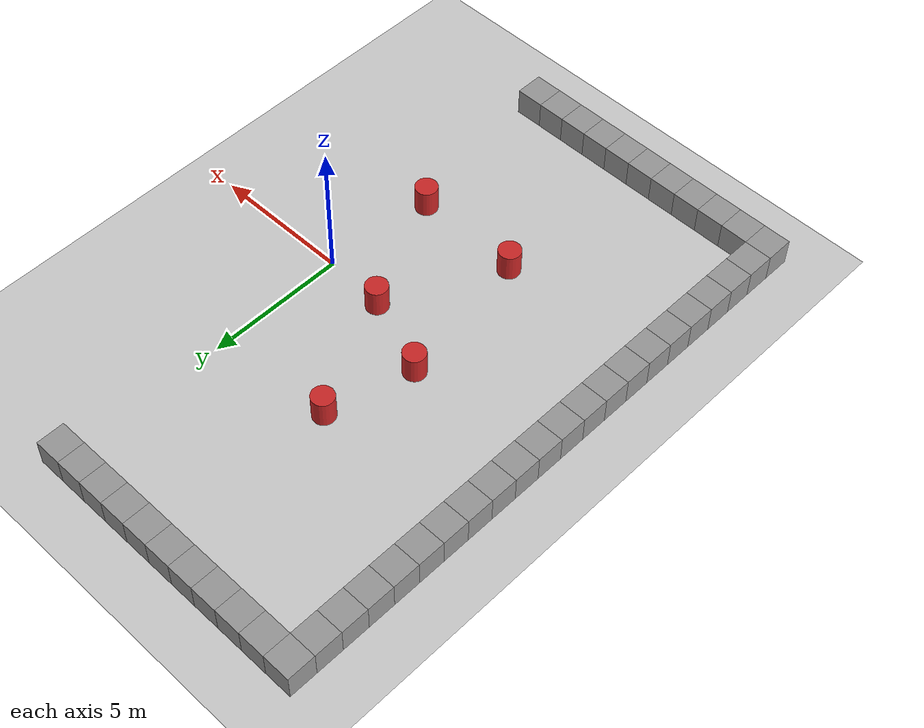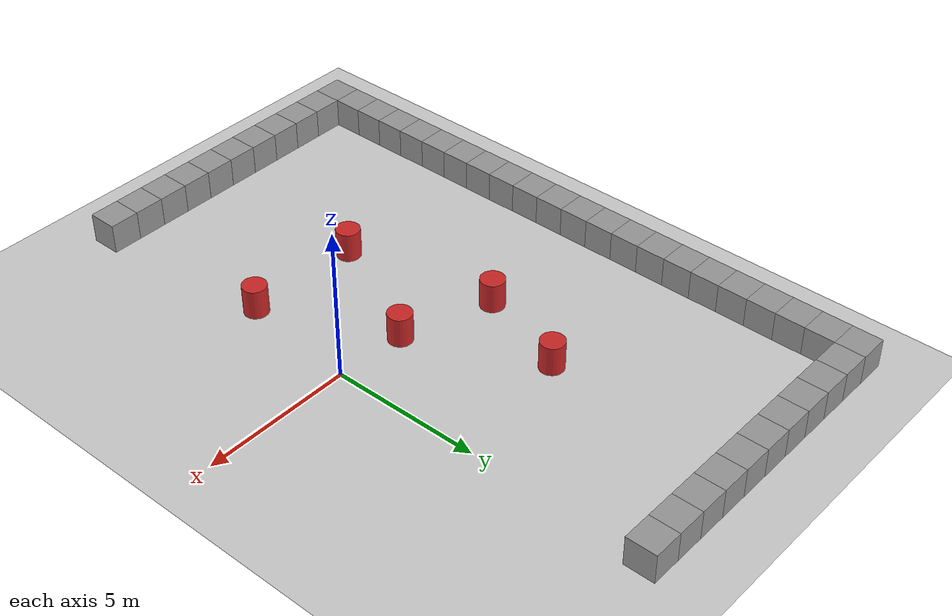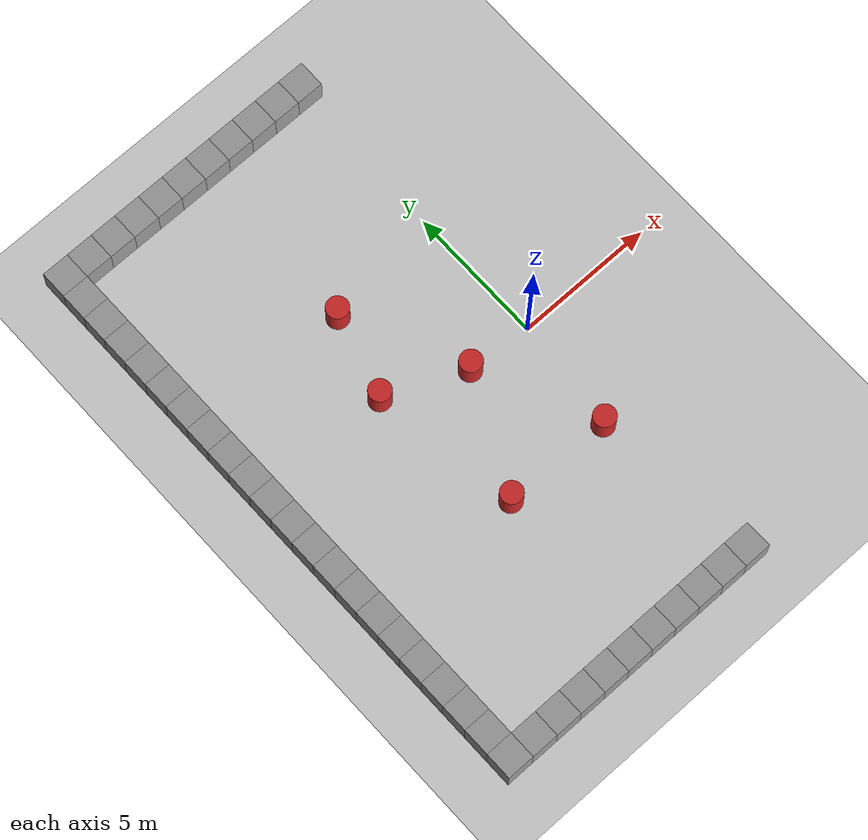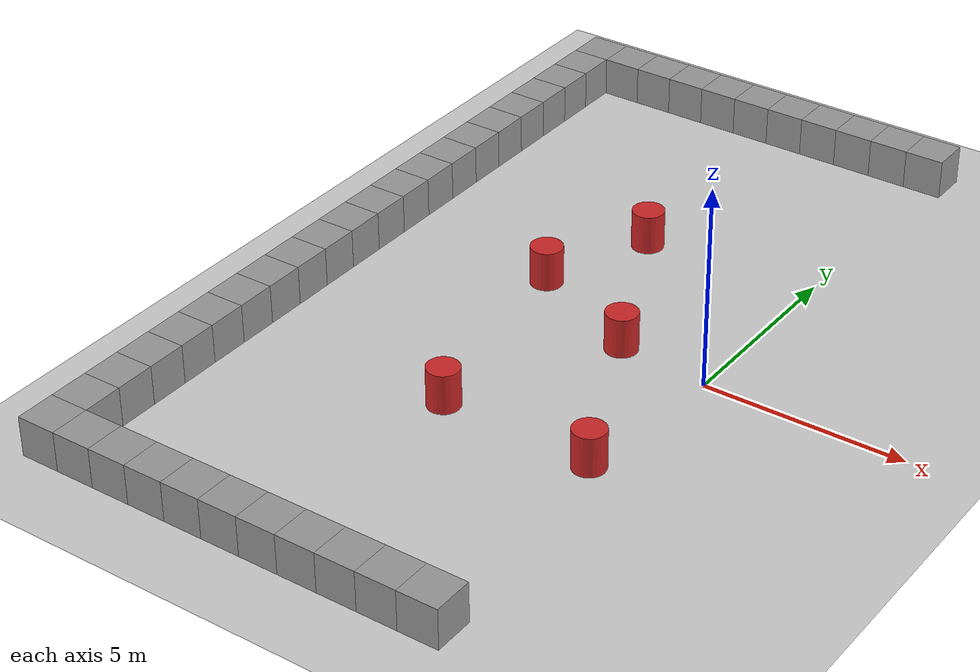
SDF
<sdf version="1.6">
 <world name="default">
  <model name="ground_plane">
   <static>1</static>
   <link name="link">
    <collision name="collision">
     <geometry><plane><normal>0 0 1</normal><size>100 100</size></plane></geometry>
     <surface><friction><ode><mu>100</mu><mu2>50</mu2></ode></friction></surface>
    </collision>
    <visual name="visual">
     <cast_shadows>0</cast_shadows>
     <geometry><plane><normal>0 0 1</normal><size>100 100</size></plane></geometry>
     <material>
      <script><uri>file://media/materials/scripts/gazebo.material</uri><name>Gazebo/Grey</name></script>
     </material>
    </visual>
    <velocity_decay><linear>0</linear><angular>0</angular></velocity_decay>
   </link>
  </model>
  <model name="unit_box_1">
   <pose>-10 -10 0.5 0 -0 0</pose>
   <link name="link">
    <inertial>
     <mass>1</mass>
     <inertia><ixx>1</ixx><ixy>0</ixy><ixz>0</ixz><iyy>1</iyy><iyz>0</iyz><izz>1</izz></inertia>
    </inertial>
    <collision name="collision"><geometry><box><size>1 1 1</size></box></geometry></collision>
    <visual name="visual">
     <geometry><box><size>1 1 1</size></box></geometry>
     <material>
      <script><uri>file://media/materials/scripts/gazebo.material</uri><name>Gazebo/Grey</name></script>
     </material>
    </visual>
    <velocity_decay><linear>0</linear><angular>0</angular></velocity_decay>
   </link>
   <static>1</static>
  </model>
  <model name="unit_box_40">
   <pose>-10 -9 0.5 0 -0 0</pose>
   <link name="link">
    <inertial>
     <mass>1</mass>
     <inertia><ixx>1</ixx><ixy>0</ixy><ixz>0</ixz><iyy>1</iyy><iyz>0</iyz><izz>1</izz></inertia>
    </inertial>
    <collision name="collision"><geometry><box><size>1 1 1</size></box></geometry></collision>
    <visual name="visual">
     <geometry><box><size>1 1 1</size></box></geometry>
     <material>
      <script><uri>file://media/materials/scripts/gazebo.material</uri><name>Gazebo/Grey</name></script>
     </material>
    </visual>
    <velocity_decay><linear>0</linear><angular>0</angular></velocity_decay>
   </link>
   <static>1</static>
  </model>
  <model name="unit_box_41">
   <pose>-10 -8 0.5 0 -0 0</pose>
   <link name="link">
    <inertial>
     <mass>1</mass>
     <inertia><ixx>1</ixx><ixy>0</ixy><ixz>0</ixz><iyy>1</iyy><iyz>0</iyz><izz>1</izz></inertia>
    </inertial>
    <collision name="collision"><geometry><box><size>1 1 1</size></box></geometry></collision>
    <visual name="visual">
     <geometry><box><size>1 1 1</size></box></geometry>
     <material>
      <script><uri>file://media/materials/scripts/gazebo.material</uri><name>Gazebo/Grey</name></script>
     </material>
    </visual>
    <velocity_decay><linear>0</linear><angular>0</angular></velocity_decay>
   </link>
   <static>1</static>
  </model>
  <model name="unit_box_42">
   <pose>-10 -7 0.5 0 -0 0</pose>
   <link name="link">
    <inertial>
     <mass>1</mass>
     <inertia><ixx>1</ixx><ixy>0</ixy><ixz>0</ixz><iyy>1</iyy><iyz>0</iyz><izz>1</izz></inertia>
    </inertial>
    <collision name="collision"><geometry><box><size>1 1 1</size></box></geometry></collision>
    <visual name="visual">
     <geometry><box><size>1 1 1</size></box></geometry>
     <material>
      <script><uri>file://media/materials/scripts/gazebo.material</uri><name>Gazebo/Grey</name></script>
     </material>
    </visual>
    <velocity_decay><linear>0</linear><angular>0</angular></velocity_decay>
   </link>
   <static>1</static>
  </model>
  <model name="unit_box_43">
   <pose>-10 -6 0.5 0 -0 0</pose>
   <link name="link">
    <inertial>
     <mass>1</mass>
     <inertia><ixx>1</ixx><ixy>0</ixy><ixz>0</ixz><iyy>1</iyy><iyz>0</iyz><izz>1</izz></inertia>
    </inertial>
    <collision name="collision"><geometry><box><size>1 1 1</size></box></geometry></collision>
    <visual name="visual">
     <geometry><box><size>1 1 1</size></box></geometry>
     <material>
      <script><uri>file://media/materials/scripts/gazebo.material</uri><name>Gazebo/Grey</name></script>
     </material>
    </visual>
    <velocity_decay><linear>0</linear><angular>0</angular></velocity_decay>
   </link>
   <static>1</static>
  </model>
  <model name="unit_box_44">
   <pose>-10 -5 0.5 0 -0 0</pose>
   <link name="link">
    <inertial>
     <mass>1</mass>
     <inertia><ixx>1</ixx><ixy>0</ixy><ixz>0</ixz><iyy>1</iyy><iyz>0</iyz><izz>1</izz></inertia>
    </inertial>
    <collision name="collision"><geometry><box><size>1 1 1</size></box></geometry></collision>
    <visual name="visual">
     <geometry><box><size>1 1 1</size></box></geometry>
     <material>
      <script><uri>file://media/materials/scripts/gazebo.material</uri><name>Gazebo/Grey</name></script>
     </material>
    </visual>
    <velocity_decay><linear>0</linear><angular>0</angular></velocity_decay>
   </link>
   <static>1</static>
  </model>
  <model name="unit_box_45">
   <pose>-10 -4 0.5 0 -0 0</pose>
   <link name="link">
    <inertial>
     <mass>1</mass>
     <inertia><ixx>1</ixx><ixy>0</ixy><ixz>0</ixz><iyy>1</iyy><iyz>0</iyz><izz>1</izz></inertia>
    </inertial>
    <collision name="collision"><geometry><box><size>1 1 1</size></box></geometry></collision>
    <visual name="visual">
     <geometry><box><size>1 1 1</size></box></geometry>
     <material>
      <script><uri>file://media/materials/scripts/gazebo.material</uri><name>Gazebo/Grey</name></script>
     </material>
    </visual>
    <velocity_decay><linear>0</linear><angular>0</angular></velocity_decay>
   </link>
   <static>1</static>
  </model>
  <model name="unit_box_46">
   <pose>-10 -3 0.5 0 -0 0</pose>
   <link name="link">
    <inertial>
     <mass>1</mass>
     <inertia><ixx>1</ixx><ixy>0</ixy><ixz>0</ixz><iyy>1</iyy><iyz>0</iyz><izz>1</izz></inertia>
    </inertial>
    <collision name="collision"><geometry><box><size>1 1 1</size></box></geometry></collision>
    <visual name="visual">
     <geometry><box><size>1 1 1</size></box></geometry>
     <material>
      <script><uri>file://media/materials/scripts/gazebo.material</uri><name>Gazebo/Grey</name></script>
     </material>
    </visual>
    <velocity_decay><linear>0</linear><angular>0</angular></velocity_decay>
   </link>
   <static>1</static>
  </model>
  <model name="unit_box_47">
   <pose>-10 -2 0.5 0 -0 0</pose>
   <link name="link">
    <inertial>
     <mass>1</mass>
     <inertia><ixx>1</ixx><ixy>0</ixy><ixz>0</ixz><iyy>1</iyy><iyz>0</iyz><izz>1</izz></inertia>
    </inertial>
    <collision name="collision"><geometry><box><size>1 1 1</size></box></geometry></collision>
    <visual name="visual">
     <geometry><box><size>1 1 1</size></box></geometry>
     <material>
      <script><uri>file://media/materials/scripts/gazebo.material</uri><name>Gazebo/Grey</name></script>
     </material>
    </visual>
    <velocity_decay><linear>0</linear><angular>0</angular></velocity_decay>
   </link>
   <static>1</static>
  </model>
  <model name="unit_box_61">
   <pose>-10 -1 0.5 0 -0 0</pose>
   <link name="link">
    <inertial>
     <mass>1</mass>
     <inertia><ixx>1</ixx><ixy>0</ixy><ixz>0</ixz><iyy>1</iyy><iyz>0</iyz><izz>1</izz></inertia>
    </inertial>
    <collision name="collision"><geometry><box><size>1 1 1</size></box></geometry></collision>
    <visual name="visual">
     <geometry><box><size>1 1 1</size></box></geometry>
     <material>
      <script><uri>file://media/materials/scripts/gazebo.material</uri><name>Gazebo/Grey</name></script>
     </material>
    </visual>
    <velocity_decay><linear>0</linear><angular>0</angular></velocity_decay>
   </link>
   <static>1</static>
  </model>
  <model name="unit_box_67">
   <pose>-10 0 0.5 0 -0 0</pose>
   <link name="link">
    <inertial>
     <mass>1</mass>
     <inertia><ixx>1</ixx><ixy>0</ixy><ixz>0</ixz><iyy>1</iyy><iyz>0</iyz><izz>1</izz></inertia>
    </inertial>
    <collision name="collision"><geometry><box><size>1 1 1</size></box></geometry></collision>
    <visual name="visual">
     <geometry><box><size>1 1 1</size></box></geometry>
     <material>
      <script><uri>file://media/materials/scripts/gazebo.material</uri><name>Gazebo/Grey</name></script>
     </material>
    </visual>
    <velocity_decay><linear>0</linear><angular>0</angular></velocity_decay>
   </link>
   <static>1</static>
  </model>
  <model name="unit_box_68">
   <pose>-10 1 0.5 0 -0 0</pose>
   <link name="link">
    <inertial>
     <mass>1</mass>
     <inertia><ixx>1</ixx><ixy>0</ixy><ixz>0</ixz><iyy>1</iyy><iyz>0</iyz><izz>1</izz></inertia>
    </inertial>
    <collision name="collision"><geometry><box><size>1 1 1</size></box></geometry></collision>
    <visual name="visual">
     <geometry><box><size>1 1 1</size></box></geometry>
     <material>
      <script><uri>file://media/materials/scripts/gazebo.material</uri><name>Gazebo/Grey</name></script>
     </material>
    </visual>
    <velocity_decay><linear>0</linear><angular>0</angular></velocity_decay>
   </link>
   <static>1</static>
  </model>
  <model name="unit_box_69">
   <pose>-10 2 0.5 0 -0 0</pose>
   <link name="link">
    <inertial>
     <mass>1</mass>
     <inertia><ixx>1</ixx><ixy>0</ixy><ixz>0</ixz><iyy>1</iyy><iyz>0</iyz><izz>1</izz></inertia>
    </inertial>
    <collision name="collision"><geometry><box><size>1 1 1</size></box></geometry></collision>
    <visual name="visual">
     <geometry><box><size>1 1 1</size></box></geometry>
     <material>
      <script><uri>file://media/materials/scripts/gazebo.material</uri><name>Gazebo/Grey</name></script>
     </material>
    </visual>
    <velocity_decay><linear>0</linear><angular>0</angular></velocity_decay>
   </link>
   <static>1</static>
  </model>
  <model name="unit_box_72">
   <pose>-10 3 0.5 0 -0 0</pose>
   <link name="link">
    <inertial>
     <mass>1</mass>
     <inertia><ixx>1</ixx><ixy>0</ixy><ixz>0</ixz><iyy>1</iyy><iyz>0</iyz><izz>1</izz></inertia>
    </inertial>
    <collision name="collision"><geometry><box><size>1 1 1</size></box></geometry></collision>
    <visual name="visual">
     <geometry><box><size>1 1 1</size></box></geometry>
     <material>
      <script><uri>file://media/materials/scripts/gazebo.material</uri><name>Gazebo/Grey</name></script>
     </material>
    </visual>
    <velocity_decay><linear>0</linear><angular>0</angular></velocity_decay>
   </link>
   <static>1</static>
  </model>
  <model name="unit_box_73">
   <pose>-10 4 0.5 0 -0 0</pose>
   <link name="link">
    <inertial>
     <mass>1</mass>
     <inertia><ixx>1</ixx><ixy>0</ixy><ixz>0</ixz><iyy>1</iyy><iyz>0</iyz><izz>1</izz></inertia>
    </inertial>
    <collision name="collision"><geometry><box><size>1 1 1</size></box></geometry></collision>
    <visual name="visual">
     <geometry><box><size>1 1 1</size></box></geometry>
     <material>
      <script><uri>file://media/materials/scripts/gazebo.material</uri><name>Gazebo/Grey</name></script>
     </material>
    </visual>
    <velocity_decay><linear>0</linear><angular>0</angular></velocity_decay>
   </link>
   <static>1</static>
  </model>
  <model name="unit_box_74">
   <pose>-10 5 0.5 0 -0 0</pose>
   <link name="link">
    <inertial>
     <mass>1</mass>
     <inertia><ixx>1</ixx><ixy>0</ixy><ixz>0</ixz><iyy>1</iyy><iyz>0</iyz><izz>1</izz></inertia>
    </inertial>
    <collision name="collision"><geometry><box><size>1 1 1</size></box></geometry></collision>
    <visual name="visual">
     <geometry><box><size>1 1 1</size></box></geometry>
     <material>
      <script><uri>file://media/materials/scripts/gazebo.material</uri><name>Gazebo/Grey</name></script>
     </material>
    </visual>
    <velocity_decay><linear>0</linear><angular>0</angular></velocity_decay>
   </link>
   <static>1</static>
  </model>
  <model name="unit_box_75">
   <pose>-10 6 0.5 0 -0 0</pose>
   <link name="link">
    <inertial>
     <mass>1</mass>
     <inertia><ixx>1</ixx><ixy>0</ixy><ixz>0</ixz><iyy>1</iyy><iyz>0</iyz><izz>1</izz></inertia>
    </inertial>
    <collision name="collision"><geometry><box><size>1 1 1</size></box></geometry></collision>
    <visual name="visual">
     <geometry><box><size>1 1 1</size></box></geometry>
     <material>
      <script><uri>file://media/materials/scripts/gazebo.material</uri><name>Gazebo/Grey</name></script>
     </material>
    </visual>
    <velocity_decay><linear>0</linear><angular>0</angular></velocity_decay>
   </link>
   <static>1</static>
  </model>
  <model name="unit_box_76">
   <pose>-10 7 0.5 0 -0 0</pose>
   <link name="link">
    <inertial>
     <mass>1</mass>
     <inertia><ixx>1</ixx><ixy>0</ixy><ixz>0</ixz><iyy>1</iyy><iyz>0</iyz><izz>1</izz></inertia>
    </inertial>
    <collision name="collision"><geometry><box><size>1 1 1</size></box></geometry></collision>
    <visual name="visual">
     <geometry><box><size>1 1 1</size></box></geometry>
     <material>
      <script><uri>file://media/materials/scripts/gazebo.material</uri><name>Gazebo/Grey</name></script>
     </material>
    </visual>
    <velocity_decay><linear>0</linear><angular>0</angular></velocity_decay>
   </link>
   <static>1</static>
  </model>
  <model name="unit_box_77">
   <pose>-10 8 0.5 0 -0 0</pose>
   <link name="link">
    <inertial>
     <mass>1</mass>
     <inertia><ixx>1</ixx><ixy>0</ixy><ixz>0</ixz><iyy>1</iyy><iyz>0</iyz><izz>1</izz></inertia>
    </inertial>
    <collision name="collision"><geometry><box><size>1 1 1</size></box></geometry></collision>
    <visual name="visual">
     <geometry><box><size>1 1 1</size></box></geometry>
     <material>
      <script><uri>file://media/materials/scripts/gazebo.material</uri><name>Gazebo/Grey</name></script>
     </material>
    </visual>
    <velocity_decay><linear>0</linear><angular>0</angular></velocity_decay>
   </link>
   <static>1</static>
  </model>
  <model name="unit_box_78">
   <pose>-10 9 0.5 0 -0 0</pose>
   <link name="link">
    <inertial>
     <mass>1</mass>
     <inertia><ixx>1</ixx><ixy>0</ixy><ixz>0</ixz><iyy>1</iyy><iyz>0</iyz><izz>1</izz></inertia>
    </inertial>
    <collision name="collision"><geometry><box><size>1 1 1</size></box></geometry></collision>
    <visual name="visual">
     <geometry><box><size>1 1 1</size></box></geometry>
     <material>
      <script><uri>file://media/materials/scripts/gazebo.material</uri><name>Gazebo/Grey</name></script>
     </material>
    </visual>
    <velocity_decay><linear>0</linear><angular>0</angular></velocity_decay>
   </link>
   <static>1</static>
  </model>
  <model name="unit_box_79">
   <pose>-10 10 0.5 0 -0 0</pose>
   <link name="link">
    <inertial>
     <mass>1</mass>
     <inertia><ixx>1</ixx><ixy>0</ixy><ixz>0</ixz><iyy>1</iyy><iyz>0</iyz><izz>1</izz></inertia>
    </inertial>
    <collision name="collision"><geometry><box><size>1 1 1</size></box></geometry></collision>
    <visual name="visual">
     <geometry><box><size>1 1 1</size></box></geometry>
     <material>
      <script><uri>file://media/materials/scripts/gazebo.material</uri><name>Gazebo/Grey</name></script>
     </material>
    </visual>
    <velocity_decay><linear>0</linear><angular>0</angular></velocity_decay>
   </link>
   <static>1</static>
  </model>
  <model name="unit_box_300">
   <pose>-10 11 0.5 0 -0 0</pose>
   <link name="link">
    <inertial>
     <mass>1</mass>
     <inertia><ixx>1</ixx><ixy>0</ixy><ixz>0</ixz><iyy>1</iyy><iyz>0</iyz><izz>1</izz></inertia>
    </inertial>
    <collision name="collision"><geometry><box><size>1 1 1</size></box></geometry></collision>
    <visual name="visual">
     <geometry><box><size>1 1 1</size></box></geometry>
     <material>
      <script><uri>file://media/materials/scripts/gazebo.material</uri><name>Gazebo/Grey</name></script>
     </material>
    </visual>
    <velocity_decay><linear>0</linear><angular>0</angular></velocity_decay>
   </link>
   <static>1</static>
  </model>
  <model name="unit_box_80">
   <pose>-9 -10 0.5 0 -0 0</pose>
   <link name="link">
    <inertial>
     <mass>1</mass>
     <inertia><ixx>1</ixx><ixy>0</ixy><ixz>0</ixz><iyy>1</iyy><iyz>0</iyz><izz>1</izz></inertia>
    </inertial>
    <collision name="collision"><geometry><box><size>1 1 1</size></box></geometry></collision>
    <visual name="visual">
     <geometry><box><size>1 1 1</size></box></geometry>
     <material>
      <script><uri>file://media/materials/scripts/gazebo.material</uri><name>Gazebo/Grey</name></script>
     </material>
    </visual>
    <velocity_decay><linear>0</linear><angular>0</angular></velocity_decay>
   </link>
   <static>1</static>
  </model>
  <model name="unit_box_96">
   <pose>-8 -10 0.5 0 -0 0</pose>
   <link name="link">
    <inertial>
     <mass>1</mass>
     <inertia><ixx>1</ixx><ixy>0</ixy><ixz>0</ixz><iyy>1</iyy><iyz>0</iyz><izz>1</izz></inertia>
    </inertial>
    <collision name="collision"><geometry><box><size>1 1 1</size></box></geometry></collision>
    <visual name="visual">
     <geometry><box><size>1 1 1</size></box></geometry>
     <material>
      <script><uri>file://media/materials/scripts/gazebo.material</uri><name>Gazebo/Grey</name></script>
     </material>
    </visual>
    <velocity_decay><linear>0</linear><angular>0</angular></velocity_decay>
   </link>
   <static>1</static>
  </model>
  <model name="unit_box_97">
   <pose>-7 -10 0.5 0 -0 0</pose>
   <link name="link">
    <inertial>
     <mass>1</mass>
     <inertia><ixx>1</ixx><ixy>0</ixy><ixz>0</ixz><iyy>1</iyy><iyz>0</iyz><izz>1</izz></inertia>
    </inertial>
    <collision name="collision"><geometry><box><size>1 1 1</size></box></geometry></collision>
    <visual name="visual">
     <geometry><box><size>1 1 1</size></box></geometry>
     <material>
      <script><uri>file://media/materials/scripts/gazebo.material</uri><name>Gazebo/Grey</name></script>
     </material>
    </visual>
    <velocity_decay><linear>0</linear><angular>0</angular></velocity_decay>
   </link>
   <static>1</static>
  </model>
  <model name="unit_box_98">
   <pose>-6 -10 0.5 0 -0 0</pose>
   <link name="link">
    <inertial>
     <mass>1</mass>
     <inertia><ixx>1</ixx><ixy>0</ixy><ixz>0</ixz><iyy>1</iyy><iyz>0</iyz><izz>1</izz></inertia>
    </inertial>
    <collision name="collision"><geometry><box><size>1 1 1</size></box></geometry></collision>
    <visual name="visual">
     <geometry><box><size>1 1 1</size></box></geometry>
     <material>
      <script><uri>file://media/materials/scripts/gazebo.material</uri><name>Gazebo/Grey</name></script>
     </material>
    </visual>
    <velocity_decay><linear>0</linear><angular>0</angular></velocity_decay>
   </link>
   <static>1</static>
  </model>
  <model name="unit_box_99">
   <pose>-5 -10 0.5 0 -0 0</pose>
   <link name="link">
    <inertial>
     <mass>1</mass>
     <inertia><ixx>1</ixx><ixy>0</ixy><ixz>0</ixz><iyy>1</iyy><iyz>0</iyz><izz>1</izz></inertia>
    </inertial>
    <collision name="collision"><geometry><box><size>1 1 1</size></box></geometry></collision>
    <visual name="visual">
     <geometry><box><size>1 1 1</size></box></geometry>
     <material>
      <script><uri>file://media/materials/scripts/gazebo.material</uri><name>Gazebo/Grey</name></script>
     </material>
    </visual>
    <velocity_decay><linear>0</linear><angular>0</angular></velocity_decay>
   </link>
   <static>1</static>
  </model>
  <model name="unit_box_100">
   <pose>-4 -10 0.5 0 -0 0</pose>
   <link name="link">
    <inertial>
     <mass>1</mass>
     <inertia><ixx>1</ixx><ixy>0</ixy><ixz>0</ixz><iyy>1</iyy><iyz>0</iyz><izz>1</izz></inertia>
    </inertial>
    <collision name="collision"><geometry><box><size>1 1 1</size></box></geometry></collision>
    <visual name="visual">
     <geometry><box><size>1 1 1</size></box></geometry>
     <material>
      <script><uri>file://media/materials/scripts/gazebo.material</uri><name>Gazebo/Grey</name></script>
     </material>
    </visual>
    <velocity_decay><linear>0</linear><angular>0</angular></velocity_decay>
   </link>
   <static>1</static>
  </model>
  <model name="unit_box_101">
   <pose>-3 -10 0.5 0 -0 0</pose>
   <link name="link">
    <inertial>
     <mass>1</mass>
     <inertia><ixx>1</ixx><ixy>0</ixy><ixz>0</ixz><iyy>1</iyy><iyz>0</iyz><izz>1</izz></inertia>
    </inertial>
    <collision name="collision"><geometry><box><size>1 1 1</size></box></geometry></collision>
    <visual name="visual">
     <geometry><box><size>1 1 1</size></box></geometry>
     <material>
      <script><uri>file://media/materials/scripts/gazebo.material</uri><name>Gazebo/Grey</name></script>
     </material>
    </visual>
    <velocity_decay><linear>0</linear><angular>0</angular></velocity_decay>
   </link>
   <static>1</static>
  </model>
  <model name="unit_box_102">
   <pose>-2 -10 0.5 0 -0 0</pose>
   <link name="link">
    <inertial>
     <mass>1</mass>
     <inertia><ixx>1</ixx><ixy>0</ixy><ixz>0</ixz><iyy>1</iyy><iyz>0</iyz><izz>1</izz></inertia>
    </inertial>
    <collision name="collision"><geometry><box><size>1 1 1</size></box></geometry></collision>
    <visual name="visual">
     <geometry><box><size>1 1 1</size></box></geometry>
     <material>
      <script><uri>file://media/materials/scripts/gazebo.material</uri><name>Gazebo/Grey</name></script>
     </material>
    </visual>
    <velocity_decay><linear>0</linear><angular>0</angular></velocity_decay>
   </link>
   <static>1</static>
  </model>
  <model name="unit_box_103">
   <pose>-1 -10 0.5 0 -0 0</pose>
   <link name="link">
    <inertial>
     <mass>1</mass>
     <inertia><ixx>1</ixx><ixy>0</ixy><ixz>0</ixz><iyy>1</iyy><iyz>0</iyz><izz>1</izz></inertia>
    </inertial>
    <collision name="collision"><geometry><box><size>1 1 1</size></box></geometry></collision>
    <visual name="visual">
     <geometry><box><size>1 1 1</size></box></geometry>
     <material>
      <script><uri>file://media/materials/scripts/gazebo.material</uri><name>Gazebo/Grey</name></script>
     </material>
    </visual>
    <velocity_decay><linear>0</linear><angular>0</angular></velocity_decay>
   </link>
   <static>1</static>
  </model>
  <model name="unit_box_104">
   <pose>0 -10 0.5 0 -0 0</pose>
   <link name="link">
    <inertial>
     <mass>1</mass>
     <inertia><ixx>1</ixx><ixy>0</ixy><ixz>0</ixz><iyy>1</iyy><iyz>0</iyz><izz>1</izz></inertia>
    </inertial>
    <collision name="collision"><geometry><box><size>1 1 1</size></box></geometry></collision>
    <visual name="visual">
     <geometry><box><size>1 1 1</size></box></geometry>
     <material>
      <script><uri>file://media/materials/scripts/gazebo.material</uri><name>Gazebo/Grey</name></script>
     </material>
    </visual>
    <velocity_decay><linear>0</linear><angular>0</angular></velocity_decay>
   </link>
   <static>1</static>
  </model>
  <model name="unit_box_115">
   <pose>-9 11 0.5 0 -0 0</pose>
   <link name="link">
    <inertial>
     <mass>1</mass>
     <inertia><ixx>1</ixx><ixy>0</ixy><ixz>0</ixz><iyy>1</iyy><iyz>0</iyz><izz>1</izz></inertia>
    </inertial>
    <collision name="collision"><geometry><box><size>1 1 1</size></box></geometry></collision>
    <visual name="visual">
     <geometry><box><size>1 1 1</size></box></geometry>
     <material>
      <script><uri>file://media/materials/scripts/gazebo.material</uri><name>Gazebo/Grey</name></script>
     </material>
    </visual>
    <velocity_decay><linear>0</linear><angular>0</angular></velocity_decay>
   </link>
   <static>1</static>
  </model>
  <model name="unit_box_116">
   <pose>-8 11 0.5 0 -0 0</pose>
   <link name="link">
    <inertial>
     <mass>1</mass>
     <inertia><ixx>1</ixx><ixy>0</ixy><ixz>0</ixz><iyy>1</iyy><iyz>0</iyz><izz>1</izz></inertia>
    </inertial>
    <collision name="collision"><geometry><box><size>1 1 1</size></box></geometry></collision>
    <visual name="visual">
     <geometry><box><size>1 1 1</size></box></geometry>
     <material>
      <script><uri>file://media/materials/scripts/gazebo.material</uri><name>Gazebo/Grey</name></script>
     </material>
    </visual>
    <velocity_decay><linear>0</linear><angular>0</angular></velocity_decay>
   </link>
   <static>1</static>
  </model>
  <model name="unit_box_121">
   <pose>-7 11 0.5 0 -0 0</pose>
   <link name="link">
    <inertial>
     <mass>1</mass>
     <inertia><ixx>1</ixx><ixy>0</ixy><ixz>0</ixz><iyy>1</iyy><iyz>0</iyz><izz>1</izz></inertia>
    </inertial>
    <collision name="collision"><geometry><box><size>1 1 1</size></box></geometry></collision>
    <visual name="visual">
     <geometry><box><size>1 1 1</size></box></geometry>
     <material>
      <script><uri>file://media/materials/scripts/gazebo.material</uri><name>Gazebo/Grey</name></script>
     </material>
    </visual>
    <velocity_decay><linear>0</linear><angular>0</angular></velocity_decay>
   </link>
   <static>1</static>
  </model>
  <model name="unit_box_134">
   <pose>-6 11 0.5 0 -0 0</pose>
   <link name="link">
    <inertial>
     <mass>1</mass>
     <inertia><ixx>1</ixx><ixy>0</ixy><ixz>0</ixz><iyy>1</iyy><iyz>0</iyz><izz>1</izz></inertia>
    </inertial>
    <collision name="collision"><geometry><box><size>1 1 1</size></box></geometry></collision>
    <visual name="visual">
     <geometry><box><size>1 1 1</size></box></geometry>
     <material>
      <script><uri>file://media/materials/scripts/gazebo.material</uri><name>Gazebo/Grey</name></script>
     </material>
    </visual>
    <velocity_decay><linear>0</linear><angular>0</angular></velocity_decay>
   </link>
   <static>1</static>
  </model>
  <model name="unit_box_135">
   <pose>-5 11 0.5 0 -0 0</pose>
   <link name="link">
    <inertial>
     <mass>1</mass>
     <inertia><ixx>1</ixx><ixy>0</ixy><ixz>0</ixz><iyy>1</iyy><iyz>0</iyz><izz>1</izz></inertia>
    </inertial>
    <collision name="collision"><geometry><box><size>1 1 1</size></box></geometry></collision>
    <visual name="visual">
     <geometry><box><size>1 1 1</size></box></geometry>
     <material>
      <script><uri>file://media/materials/scripts/gazebo.material</uri><name>Gazebo/Grey</name></script>
     </material>
    </visual>
    <velocity_decay><linear>0</linear><angular>0</angular></velocity_decay>
   </link>
   <static>1</static>
  </model>
  <model name="unit_box_136">
   <pose>-4 11 0.5 0 -0 0</pose>
   <link name="link">
    <inertial>
     <mass>1</mass>
     <inertia><ixx>1</ixx><ixy>0</ixy><ixz>0</ixz><iyy>1</iyy><iyz>0</iyz><izz>1</izz></inertia>
    </inertial>
    <collision name="collision"><geometry><box><size>1 1 1</size></box></geometry></collision>
    <visual name="visual">
     <geometry><box><size>1 1 1</size></box></geometry>
     <material>
      <script><uri>file://media/materials/scripts/gazebo.material</uri><name>Gazebo/Grey</name></script>
     </material>
    </visual>
    <velocity_decay><linear>0</linear><angular>0</angular></velocity_decay>
   </link>
   <static>1</static>
  </model>
  <model name="unit_box_137">
   <pose>-3 11 0.5 0 -0 0</pose>
   <link name="link">
    <inertial>
     <mass>1</mass>
     <inertia><ixx>1</ixx><ixy>0</ixy><ixz>0</ixz><iyy>1</iyy><iyz>0</iyz><izz>1</izz></inertia>
    </inertial>
    <collision name="collision"><geometry><box><size>1 1 1</size></box></geometry></collision>
    <visual name="visual">
     <geometry><box><size>1 1 1</size></box></geometry>
     <material>
      <script><uri>file://media/materials/scripts/gazebo.material</uri><name>Gazebo/Grey</name></script>
     </material>
    </visual>
    <velocity_decay><linear>0</linear><angular>0</angular></velocity_decay>
   </link>
   <static>1</static>
  </model>
  <model name="unit_box_146">
   <pose>-2 11 0.5 0 -0 0</pose>
   <link name="link">
    <inertial>
     <mass>1</mass>
     <inertia><ixx>1</ixx><ixy>0</ixy><ixz>0</ixz><iyy>1</iyy><iyz>0</iyz><izz>1</izz></inertia>
    </inertial>
    <collision name="collision"><geometry><box><size>1 1 1</size></box></geometry></collision>
    <visual name="visual">
     <geometry><box><size>1 1 1</size></box></geometry>
     <material>
      <script><uri>file://media/materials/scripts/gazebo.material</uri><name>Gazebo/Grey</name></script>
     </material>
    </visual>
    <velocity_decay><linear>0</linear><angular>0</angular></velocity_decay>
   </link>
   <static>1</static>
  </model>
  <model name="unit_box_147">
   <pose>-1 11 0.5 0 -0 0</pose>
   <link name="link">
    <inertial>
     <mass>1</mass>
     <inertia><ixx>1</ixx><ixy>0</ixy><ixz>0</ixz><iyy>1</iyy><iyz>0</iyz><izz>1</izz></inertia>
    </inertial>
    <collision name="collision"><geometry><box><size>1 1 1</size></box></geometry></collision>
    <visual name="visual">
     <geometry><box><size>1 1 1</size></box></geometry>
     <material>
      <script><uri>file://media/materials/scripts/gazebo.material</uri><name>Gazebo/Grey</name></script>
     </material>
    </visual>
    <velocity_decay><linear>0</linear><angular>0</angular></velocity_decay>
   </link>
   <static>1</static>
  </model>
  <model name="unit_box_148">
   <pose>0 11 0.5 0 -0 0</pose>
   <link name="link">
    <inertial>
     <mass>1</mass>
     <inertia><ixx>1</ixx><ixy>0</ixy><ixz>0</ixz><iyy>1</iyy><iyz>0</iyz><izz>1</izz></inertia>
    </inertial>
    <collision name="collision"><geometry><box><size>1 1 1</size></box></geometry></collision>
    <visual name="visual">
     <geometry><box><size>1 1 1</size></box></geometry>
     <material>
      <script><uri>file://media/materials/scripts/gazebo.material</uri><name>Gazebo/Grey</name></script>
     </material>
    </visual>
    <velocity_decay><linear>0</linear><angular>0</angular></velocity_decay>
   </link>
   <static>1</static>
  </model>
  <model name="unit_cylinder_4">
   <pose>-5.15368 1.3472 0.681889 0 -0 0</pose>
   <link name="link">
    <inertial>
     <mass>1</mass>
     <inertia><ixx>1</ixx><ixy>0</ixy><ixz>0</ixz><iyy>1</iyy><iyz>0</iyz><izz>1</izz></inertia>
    </inertial>
    <collision name="collision">
     <geometry><cylinder><radius>0.4</radius><length>1</length></cylinder></geometry>
    </collision>
    <visual name="visual">
     <geometry><cylinder><radius>0.4</radius><length>1</length></cylinder></geometry>
     <material>
      <script><uri>file://media/materials/scripts/gazebo.material</uri><name>Gazebo/Red</name></script>
     </material>
    </visual>
    <velocity_decay><linear>0</linear><angular>0</angular></velocity_decay>
   </link>
   <static>1</static>
  </model>
  <model name="unit_cylinder_5">
   <pose>-4.29455 -3.87506 0.5 0 -0 0</pose>
   <link name="link">
    <inertial>
     <mass>1</mass>
     <inertia><ixx>1</ixx><ixy>0</ixy><ixz>0</ixz><iyy>1</iyy><iyz>0</iyz><izz>1</izz></inertia>
    </inertial>
    <collision name="collision">
     <geometry><cylinder><radius>0.4</radius><length>1</length></cylinder></geometry>
    </collision>
    <visual name="visual">
     <geometry><cylinder><radius>0.4</radius><length>1</length></cylinder></geometry>
     <material>
      <script><uri>file://media/materials/scripts/gazebo.material</uri><name>Gazebo/Red</name></script>
     </material>
    </visual>
    <velocity_decay><linear>0</linear><angular>0</angular></velocity_decay>
   </link>
   <static>1</static>
  </model>
  <model name="unit_cylinder_6">
   <pose>-2.30962 0.198538 0.5 0 -0 0</pose>
   <link name="link">
    <inertial>
     <mass>1</mass>
     <inertia><ixx>1</ixx><ixy>0</ixy><ixz>0</ixz><iyy>1</iyy><iyz>0</iyz><izz>1</izz></inertia>
    </inertial>
    <collision name="collision">
     <geometry><cylinder><radius>0.4</radius><length>1</length></cylinder></geometry>
    </collision>
    <visual name="visual">
     <geometry><cylinder><radius>0.4</radius><length>1</length></cylinder></geometry>
     <material>
      <script><uri>file://media/materials/scripts/gazebo.material</uri><name>Gazebo/Red</name></script>
     </material>
    </visual>
    <velocity_decay><linear>0</linear><angular>0</angular></velocity_decay>
   </link>
   <static>1</static>
  </model>
  <model name="unit_cylinder_9">
   <pose>-0.408479 -3.97685 0.5 0 -0 0</pose>
   <link name="link">
    <inertial>
     <mass>1</mass>
     <inertia><ixx>1</ixx><ixy>0</ixy><ixz>0</ixz><iyy>1</iyy><iyz>0</iyz><izz>1</izz></inertia>
    </inertial>
    <collision name="collision">
     <geometry><cylinder><radius>0.4</radius><length>1</length></cylinder></geometry>
    </collision>
    <visual name="visual">
     <geometry><cylinder><radius>0.4</radius><length>1</length></cylinder></geometry>
     <material>
      <script><uri>file://media/materials/scripts/gazebo.material</uri><name>Gazebo/Red</name></script>
     </material>
    </visual>
    <velocity_decay><linear>0</linear><angular>0</angular></velocity_decay>
   </link>
   <static>1</static>
  </model>
  <model name="unit_cylinder_10">
   <pose>-4.25923 4.37004 0.5 0 -0 0</pose>
   <link name="link">
    <inertial>
     <mass>1</mass>
     <inertia><ixx>1</ixx><ixy>0</ixy><ixz>0</ixz><iyy>1</iyy><iyz>0</iyz><izz>1</izz></inertia>
    </inertial>
    <collision name="collision">
     <geometry><cylinder><radius>0.4</radius><length>1</length></cylinder></geometry>
    </collision>
    <visual name="visual">
     <geometry><cylinder><radius>0.4</radius><length>1</length></cylinder></geometry>
     <material>
      <script><uri>file://media/materials/scripts/gazebo.material</uri><name>Gazebo/Red</name></script>
     </material>
    </visual>
    <velocity_decay><linear>0</linear><angular>0</angular></velocity_decay>
   </link>
   <static>1</static>
  </model>
 </world>
</sdf>
